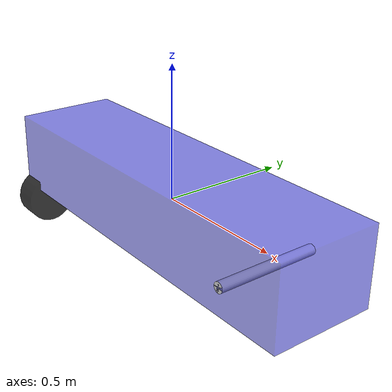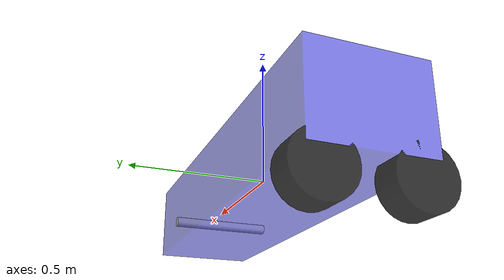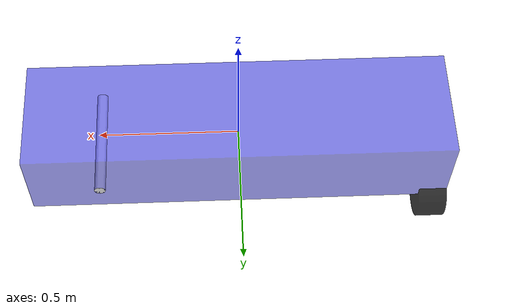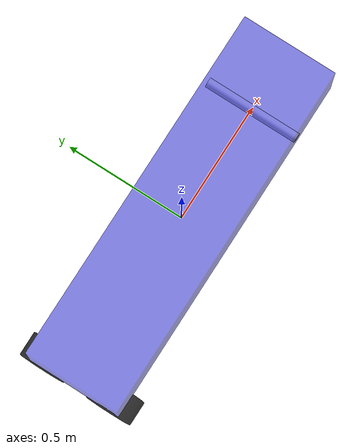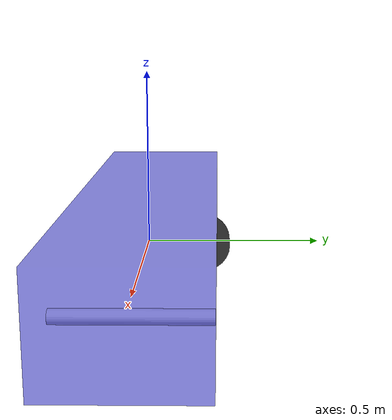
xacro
<?xml version="1.0"?>
<robot name="asv" xmlns:xacro="http://www.ros.org/wiki/xacro">
    <xacro:property name="PI" value="3.1415926535897931"/>

	<material name="blue">
		<color rgba="0 0 0.8 0.5"/>
	</material>
	<material name="black">
		<color rgba="0 0 0 0.8"/>
	</material>
	<material name="white">
		<color rgba="1 1 1 1"/>
	</material>

    <!-- Thruster link -->
    <xacro:macro name="thruster_dummy_link" params="name xyz">
        <joint name="${name}" type="revolute">
            <parent link="base_link"/>
            <child link="${name}"/>
            <axis xyz="0 0 1"/>
            <origin rpy="0 0 0" xyz="${xyz}"/>
            <limit effort="20" lower="${-PI}" upper="${PI}" velocity="0"/>
        </joint>
        <link name="${name}">
            <buoyancy><compensation>0.5</compensation></buoyancy>
            <visual name="${name}">
                <geometry>
                    <cylinder length="0.1" radius=".1"/>
                </geometry>
				<origin rpy="0 ${PI/2} 0" xyz="0 0 0"/>
                <material name="black"/>
            </visual>
            <inertial>
                <mass value=".1"/>
                <inertia
                    ixx=".1"
                    ixy="0.0"
                    ixz="0.0"
                    iyy=".1"
                    iyz="0.0"
                    izz=".1"/>
            </inertial>
        </link>
        <gazebo reference="${name}">
            <material>Gazebo/Black</material>
        </gazebo>
    </xacro:macro>
    <link name="base_link">
    	<visual>
            <geometry>
                <box size="1.5 0.4 0.3"/>
      		</geometry>
            <material name="blue"/>
        </visual>
        <inertial>
            <origin xyz="0 0 0" rpy="0 0 0"/>
            <mass value="5"/>
            <inertia
                ixx="5"
                ixy="0.0"
                ixz="0.0"
                iyy="5"
                iyz="5"
                izz="5"/>
        </inertial>
        <buoyancy>
            <compensation>10.0</compensation>
            <origin xyz = "0 0 0"/>
            <limit radius="0.01"/>
            <damping xyz="100 150 300" rpy="50 100 100"/>
        </buoyancy>
	</link>

    <link name="thr0">
        <buoyancy><compensation>0.0</compensation></buoyancy>
        <visual name="thr0">
            <geometry>
                <cylinder length=".4" radius=".02"/>
            </geometry>
            <material name="white"/>
        </visual>
        <inertial>
            <mass value=".5"/>
            <inertia
                ixx=".1"
                ixy="0.0"
                ixz="0.0"
                iyy=".1"
                iyz="0.0"
                izz=".1"/>
        </inertial>
    </link>
    <joint name="thr0" type="revolute">
        <parent link="base_link"/>
        <child link="thr0"/>
        <origin rpy="0 0 0" xyz="0.5 0 -0.05"/>
        <limit effort="10" lower="${PI/2}" upper="${PI/2}" velocity="0"/>
    </joint>
    <xacro:thruster_dummy_link name="thr1" xyz="-0.7 -0.15 -0.2"/>
    <xacro:thruster_dummy_link name="thr2" xyz="-0.7 0.15 -0.2"/>

</robot>
